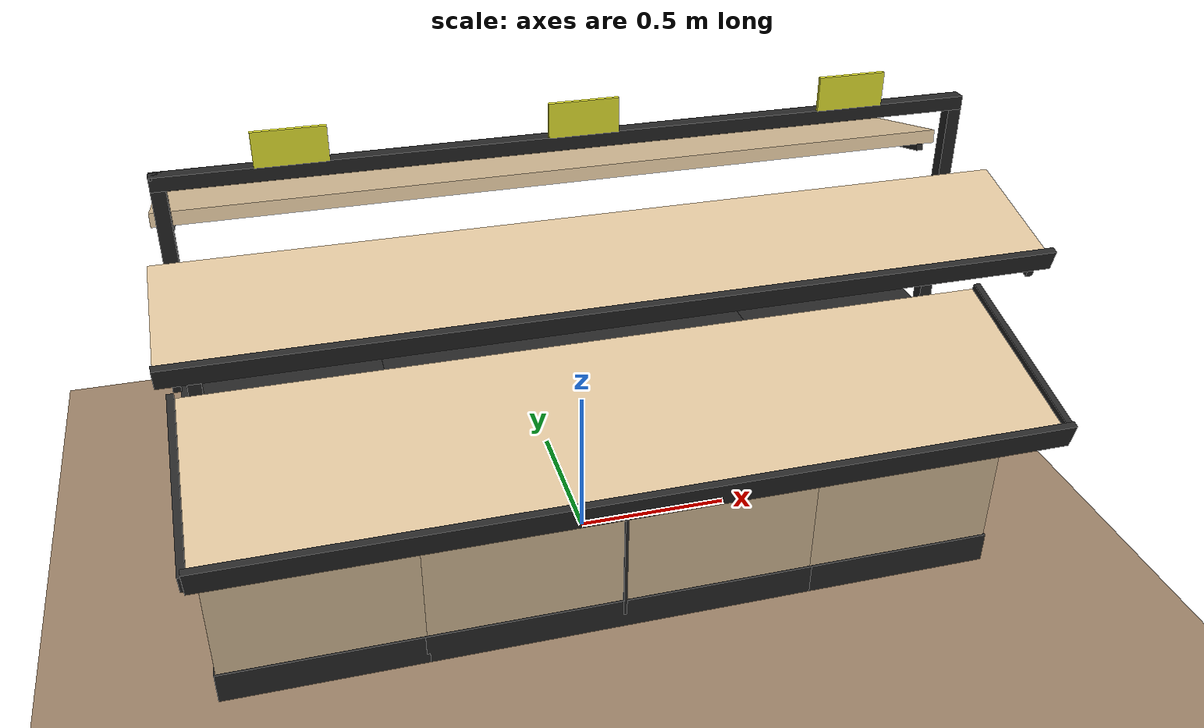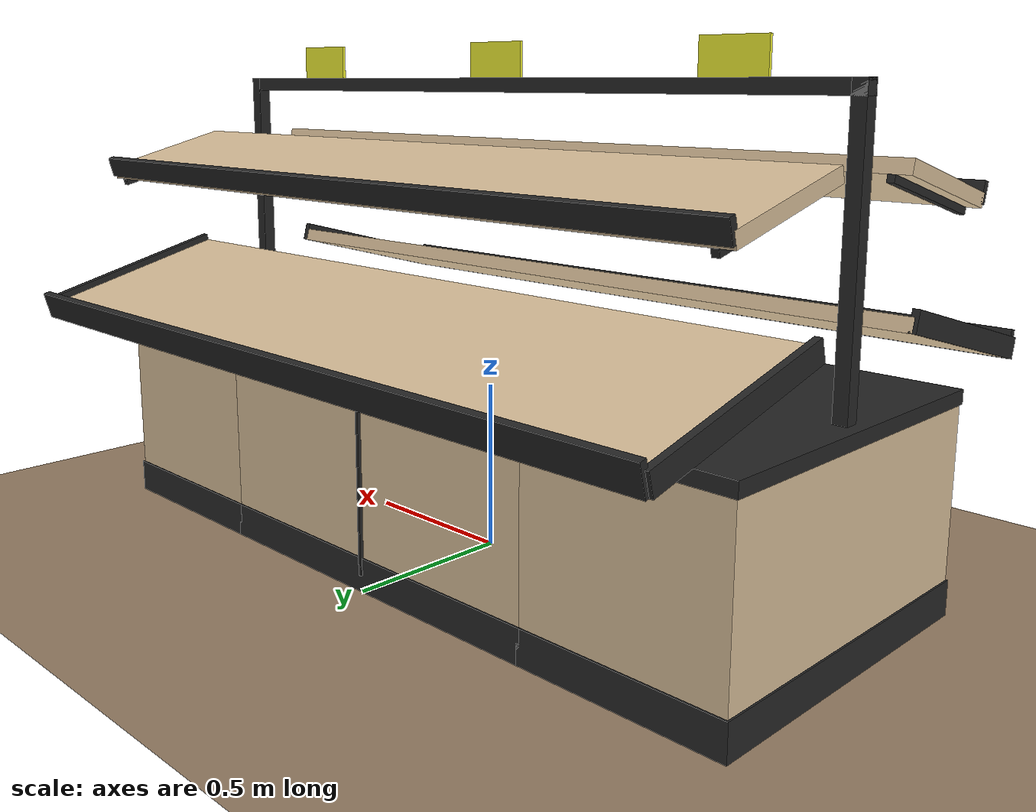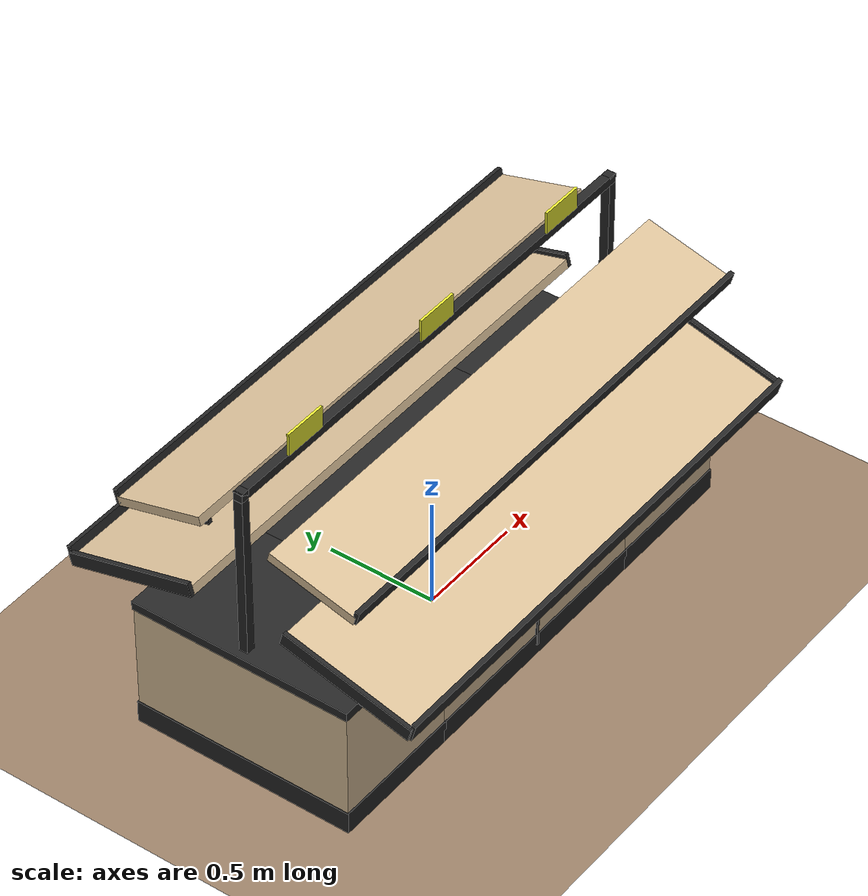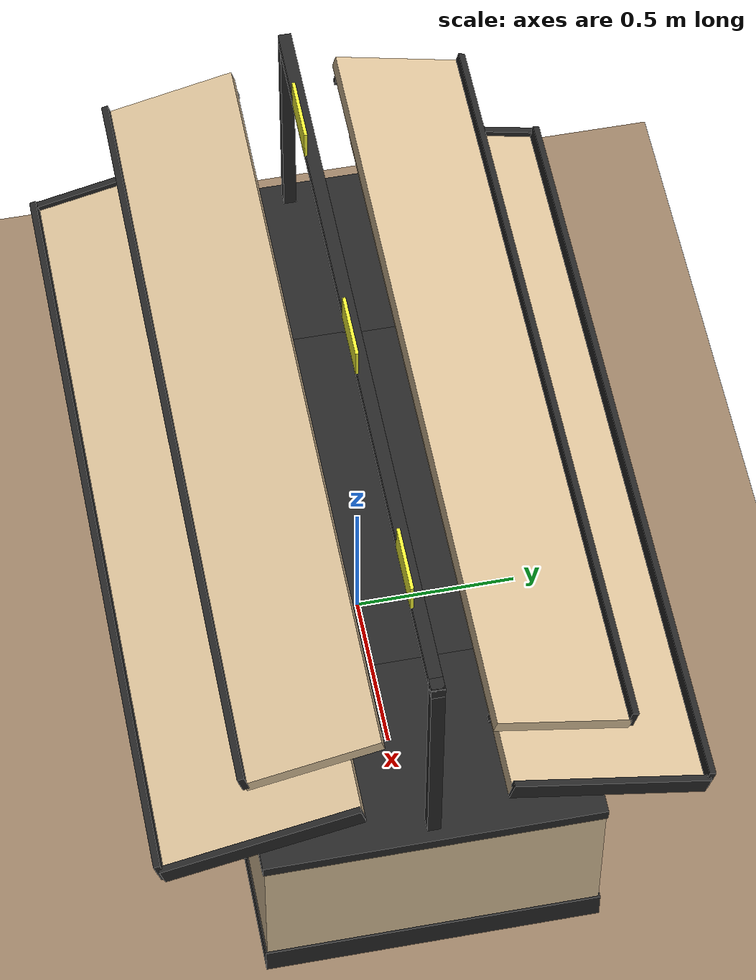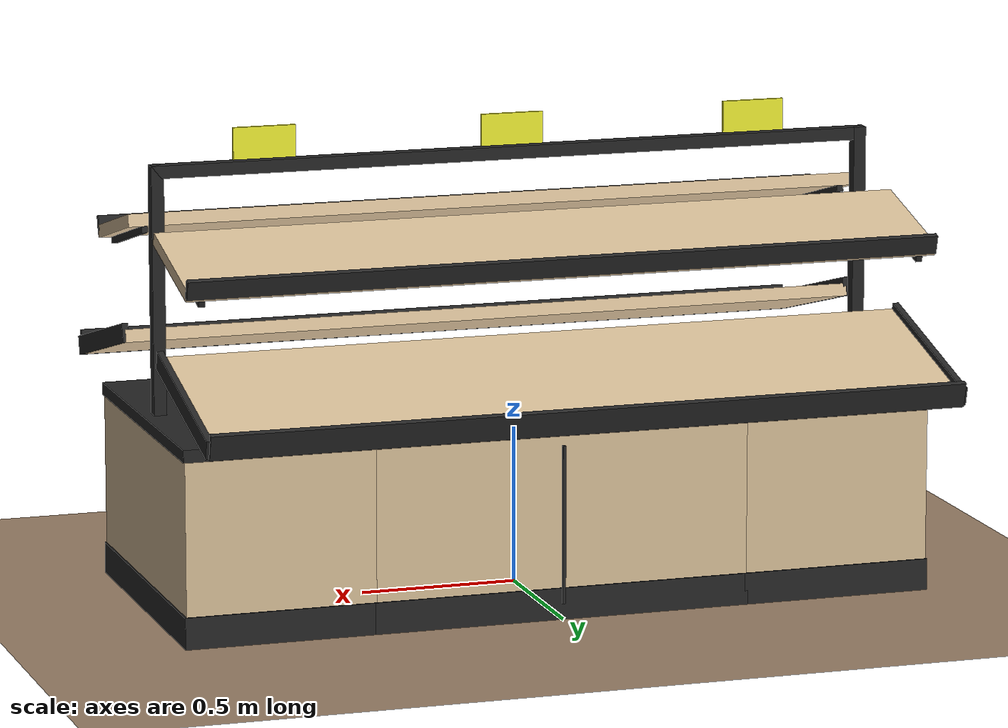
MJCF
<mujoco model="fruit_stand">
  <compiler angle="degree" coordinate="local"/>
  <option timestep="0.01" gravity="0 0 -9.81"/>

  <visual>
    <headlight ambient="0.6 0.6 0.6"/>
    <global offwidth="1920" offheight="1080"/>
  </visual>

  <asset>
    <texture type="skybox" builtin="gradient" rgb1="0.9 0.9 1" rgb2="1 1 1" width="512" height="512"/>

    <!-- Materials -->
    <material name="wood_light" rgba="0.85 0.75 0.6 1" specular="0.1" shininess="0.1"/>
    <material name="wood_dark" rgba="0.6 0.5 0.4 1" specular="0.1" shininess="0.1"/>
    <material name="metal_black" rgba="0.15 0.15 0.15 1" specular="0.7" shininess="0.8"/>
    <material name="wire_mesh" rgba="0.1 0.1 0.1 0.3" specular="0.2" shininess="0.2"/>
    <material name="price_tag_bg" rgba="0.95 0.95 0.2 1" specular="0.2" shininess="0.2"/>
    <material name="price_tag_text" rgba="0 0 0 1"/>
  </asset>

  <worldbody>
    <light pos="0 0 4" dir="0 0 -1" diffuse="0.8 0.8 0.8"/>
    <geom name="floor" type="plane" size="5 5 0.1" material="wood_dark" rgba="0.5 0.5 0.5 1"/>

    <!-- FRUIT STAND ASSEMBLY -->
    <!-- Overall dimensions: approx 2.28m x 1.35m x 1.4m -->
    <body name="fruit_stand" pos="0 0 0">

      <!-- ================= BASE CABINETS ================= -->
      <!-- Main Center Cabinet (Double sided) -->
      <!-- Size: 1.2m long, 1.0m wide, 0.6m high -->
      <body name="base_center" pos="0 0 0.3">
        <!-- Wood Box -->
        <geom name="base_box" type="box" size="0.6 0.5 0.3" material="wood_light"/>
        <!-- Black Metal Frame / Kickplate -->
        <geom name="base_frame_bottom" type="box" size="0.605 0.505 0.05" pos="0 0 -0.25" material="metal_black"/>
        <geom name="base_frame_top" type="box" size="0.605 0.505 0.02" pos="0 0 0.3" material="metal_black"/>
        <!-- Decorative lines (Drawers/Doors) -->
        <geom name="door_line" type="box" size="0.005 0.51 0.25" pos="0 0 0" material="metal_black"/>
      </body>

      <!-- End Cap Cabinet (Left) -->
      <!-- Semi-hexagonal shape approximated with a box + rotation or just a box -->
      <body name="base_left" pos="-0.9 0 0.3">
        <geom name="base_left_box" type="box" size="0.3 0.5 0.3" material="wood_light"/>
        <geom name="base_left_frame_b" type="box" size="0.305 0.505 0.05" pos="0 0 -0.25" material="metal_black"/>
        <geom name="base_left_frame_t" type="box" size="0.305 0.505 0.02" pos="0 0 0.3" material="metal_black"/>
      </body>

      <!-- End Cap Cabinet (Right) -->
      <body name="base_right" pos="0.9 0 0.3">
        <geom name="base_right_box" type="box" size="0.3 0.5 0.3" material="wood_light"/>
        <geom name="base_right_frame_b" type="box" size="0.305 0.505 0.05" pos="0 0 -0.25" material="metal_black"/>
        <geom name="base_right_frame_t" type="box" size="0.305 0.505 0.02" pos="0 0 0.3" material="metal_black"/>
      </body>

      <!-- ================= CENTRAL FRAME ================= -->
      <!-- Vertical posts -->
      <geom name="post_left" type="box" size="0.02 0.02 0.7" pos="-1.15 0 0.7" material="metal_black"/>
      <geom name="post_right" type="box" size="0.02 0.02 0.7" pos="1.15 0 0.7" material="metal_black"/>

      <!-- Top Crossbar -->
      <geom name="crossbar_top" type="box" size="1.17 0.02 0.02" pos="0 0 1.38" material="metal_black"/>

      <!-- ================= SHELVES ================= -->

      <!-- LOWER SHELVES (On top of base, angled) -->
      <!-- Front Lower -->
      <body name="shelf_lower_front" pos="0 -0.5 0.75" euler="15 0 0">
        <geom name="slf_wood" type="box" size="1.2 0.3 0.02" material="wood_light"/>
        <geom name="slf_rail" type="box" size="1.2 0.01 0.04" pos="0 -0.3 0.02" material="metal_black"/>
        <!-- Side rails -->
        <geom name="slf_rail_l" type="box" size="0.01 0.3 0.03" pos="-1.2 0 0.01" material="metal_black"/>
        <geom name="slf_rail_r" type="box" size="0.01 0.3 0.03" pos="1.2 0 0.01" material="metal_black"/>

      </body>

      <!-- Back Lower -->
      <body name="shelf_lower_back" pos="0 0.5 0.75" euler="-15 0 0">
        <geom name="slb_wood" type="box" size="1.2 0.3 0.02" material="wood_light"/>
        <geom name="slb_rail" type="box" size="1.2 0.01 0.04" pos="0 0.3 0.02" material="metal_black"/>
        <!-- Side rails -->
        <geom name="slb_rail_l" type="box" size="0.01 0.3 0.03" pos="-1.2 0 0.01" material="metal_black"/>
        <geom name="slb_rail_r" type="box" size="0.01 0.3 0.03" pos="1.2 0 0.01" material="metal_black"/>
      </body>

      <!-- UPPER SHELVES (Cantilevered from posts) -->
      <!-- Front Upper -->
      <body name="shelf_upper_front" pos="0 -0.35 1.15" euler="15 0 0">
        <geom name="suf_wood" type="box" size="1.2 0.2 0.02" material="wood_light"/>
        <geom name="suf_rail" type="box" size="1.2 0.01 0.03" pos="0 -0.2 0.02" material="metal_black"/>
        <!-- Brackets -->
        <geom name="suf_bracket_l" type="box" size="0.01 0.2 0.01" pos="-1.15 0 -0.03" material="metal_black"/>
        <geom name="suf_bracket_r" type="box" size="0.01 0.2 0.01" pos="1.15 0 -0.03" material="metal_black"/>
      </body>

      <!-- Back Upper -->
      <body name="shelf_upper_back" pos="0 0.35 1.15" euler="-15 0 0">
        <geom name="sub_wood" type="box" size="1.2 0.2 0.02" material="wood_light"/>
        <geom name="sub_rail" type="box" size="1.2 0.01 0.03" pos="0 0.2 0.02" material="metal_black"/>
        <!-- Brackets -->
        <geom name="sub_bracket_l" type="box" size="0.01 0.2 0.01" pos="-1.15 0 -0.03" material="metal_black"/>
        <geom name="sub_bracket_r" type="box" size="0.01 0.2 0.01" pos="1.15 0 -0.03" material="metal_black"/>
      </body>

      <!-- ================= PRICE TAGS ================= -->
      <body name="price_tags" pos="0 0 1.45">
        <geom name="tag1" type="box" size="0.1 0.005 0.05" pos="-0.8 -0.02 0" material="price_tag_bg"/>
        <geom name="tag2" type="box" size="0.1 0.005 0.05" pos="0 -0.02 0" material="price_tag_bg"/>
        <geom name="tag3" type="box" size="0.1 0.005 0.05" pos="0.8 -0.02 0" material="price_tag_bg"/>
      </body>

    </body>
  </worldbody>
</mujoco>
